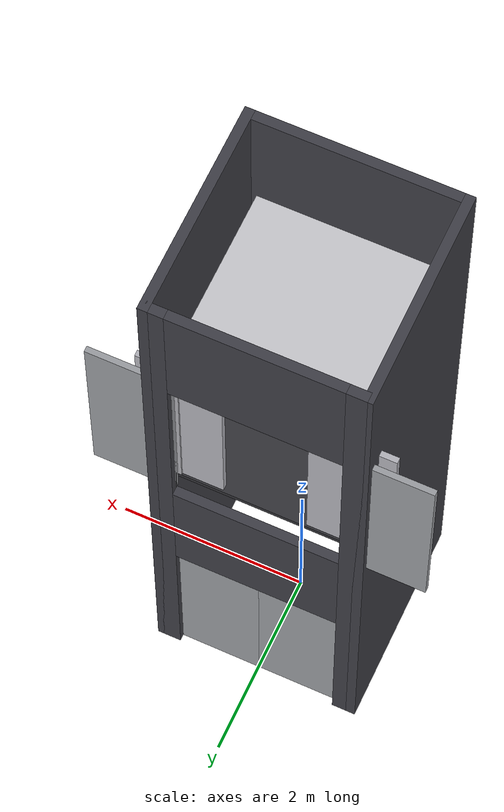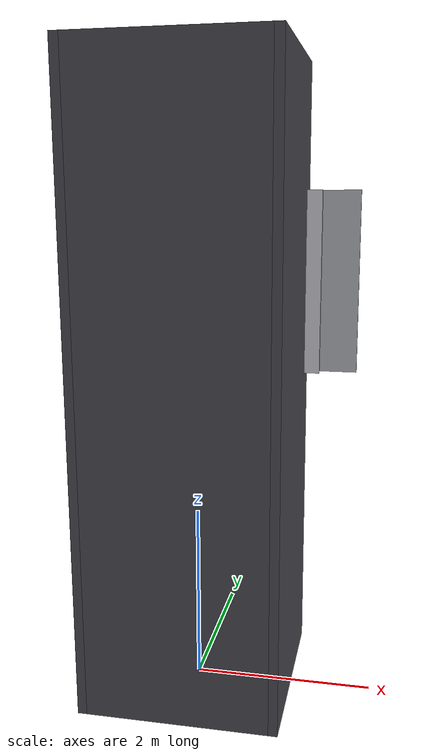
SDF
<?xml version="1.0" ?>
<sdf version="1.6">
  <model name="lift_assembly">
    <static>true</static>

    <!-- SHAFT (fixed geometry, identical to the original) -->
    <link name="shaft_link">
      <pose>0 0 0 0 0 0</pose>

      <!-- Left Wall (Solid) -->
      <collision name="left_wall_collision">
        <pose>-1.05 0 3.5 0 0 0</pose>
        <geometry><box><size>0.1 2.2 7.0</size></box></geometry>
      </collision>
      <visual name="left_wall_visual">
        <pose>-1.05 0 3.5 0 0 0</pose>
        <geometry><box><size>0.1 2.2 7.0</size></box></geometry>
        <material><ambient>0.25 0.25 0.28 1</ambient><diffuse>0.25 0.25 0.28 1</diffuse><specular>0.4 0.4 0.4 1</specular></material>
      </visual>

      <!-- Right Wall (Solid) -->
      <collision name="right_wall_collision">
        <pose>1.05 0 3.5 0 0 0</pose>
        <geometry><box><size>0.1 2.2 7.0</size></box></geometry>
      </collision>
      <visual name="right_wall_visual">
        <pose>1.05 0 3.5 0 0 0</pose>
        <geometry><box><size>0.1 2.2 7.0</size></box></geometry>
        <material><ambient>0.25 0.25 0.28 1</ambient><diffuse>0.25 0.25 0.28 1</diffuse><specular>0.4 0.4 0.4 1</specular></material>
      </visual>

      <!-- Back Wall (Solid) -->
      <collision name="back_wall_collision">
        <pose>0 -1.05 3.5 0 0 0</pose>
        <geometry><box><size>2.0 0.1 7.0</size></box></geometry>
      </collision>
      <visual name="back_wall_visual">
        <pose>0 -1.05 3.5 0 0 0</pose>
        <geometry><box><size>2.0 0.1 7.0</size></box></geometry>
        <material><ambient>0.25 0.25 0.28 1</ambient><diffuse>0.25 0.25 0.28 1</diffuse><specular>0.4 0.4 0.4 1</specular></material>
      </visual>

      <!-- Front Wall posts + beams (with door openings) -->
      <collision name="front_left_post_collision">
        <pose>-0.95 1.05 3.5 0 0 0</pose>
        <geometry><box><size>0.2 0.1 7.0</size></box></geometry>
      </collision>
      <visual name="front_left_post_visual">
        <pose>-0.95 1.05 3.5 0 0 0</pose>
        <geometry><box><size>0.2 0.1 7.0</size></box></geometry>
        <material><ambient>0.25 0.25 0.28 1</ambient><diffuse>0.25 0.25 0.28 1</diffuse></material>
      </visual>

      <collision name="front_right_post_collision">
        <pose>0.95 1.05 3.5 0 0 0</pose>
        <geometry><box><size>0.2 0.1 7.0</size></box></geometry>
      </collision>
      <visual name="front_right_post_visual">
        <pose>0.95 1.05 3.5 0 0 0</pose>
        <geometry><box><size>0.2 0.1 7.0</size></box></geometry>
        <material><ambient>0.25 0.25 0.28 1</ambient><diffuse>0.25 0.25 0.28 1</diffuse></material>
      </visual>

      <collision name="front_mid_beam_collision">
        <pose>0 1.05 2.8 0 0 0</pose>
        <geometry><box><size>1.7 0.1 1.4</size></box></geometry>
      </collision>
      <visual name="front_mid_beam_visual">
        <pose>0 1.05 2.8 0 0 0</pose>
        <geometry><box><size>1.7 0.1 1.4</size></box></geometry>
        <material><ambient>0.25 0.25 0.28 1</ambient><diffuse>0.25 0.25 0.28 1</diffuse></material>
      </visual>

      <collision name="front_top_beam_collision">
        <pose>0 1.05 6.3 0 0 0</pose>
        <geometry><box><size>1.7 0.1 1.4</size></box></geometry>
      </collision>
      <visual name="front_top_beam_visual">
        <pose>0 1.05 6.3 0 0 0</pose>
        <geometry><box><size>1.7 0.1 1.4</size></box></geometry>
        <material><ambient>0.25 0.25 0.28 1</ambient><diffuse>0.25 0.25 0.28 1</diffuse></material>
      </visual>

      <!-- GROUND FLOOR LANDING DOORS - CLOSED (cabin isn't here) -->
      <collision name="ground_door_left_collision">
        <pose>-0.425 1.0 1.05 0 0 0</pose>
        <geometry><box><size>0.85 0.06 2.1</size></box></geometry>
      </collision>
      <visual name="ground_door_left_visual">
        <pose>-0.425 1.0 1.05 0 0 0</pose>
        <geometry><box><size>0.85 0.06 2.1</size></box></geometry>
        <material><ambient>0.55 0.56 0.58 1</ambient><diffuse>0.62 0.63 0.65 1</diffuse><specular>0.75 0.75 0.77 1</specular></material>
      </visual>

      <collision name="ground_door_right_collision">
        <pose>0.425 1.0 1.05 0 0 0</pose>
        <geometry><box><size>0.85 0.06 2.1</size></box></geometry>
      </collision>
      <visual name="ground_door_right_visual">
        <pose>0.425 1.0 1.05 0 0 0</pose>
        <geometry><box><size>0.85 0.06 2.1</size></box></geometry>
        <material><ambient>0.55 0.56 0.58 1</ambient><diffuse>0.62 0.63 0.65 1</diffuse><specular>0.75 0.75 0.77 1</specular></material>
      </visual>

      <!-- FIRST FLOOR LANDING DOORS - OPEN (slid fully into the side-wall
           pockets), since the cabin has "arrived" here -->
      <collision name="first_door_left_collision">
        <pose>-1.275 1.0 4.55 0 0 0</pose>
        <geometry><box><size>0.85 0.06 2.1</size></box></geometry>
      </collision>
      <visual name="first_door_left_visual">
        <pose>-1.275 1.0 4.55 0 0 0</pose>
        <geometry><box><size>0.85 0.06 2.1</size></box></geometry>
        <material><ambient>0.55 0.56 0.58 1</ambient><diffuse>0.62 0.63 0.65 1</diffuse><specular>0.75 0.75 0.77 1</specular></material>
      </visual>

      <collision name="first_door_right_collision">
        <pose>1.275 1.0 4.55 0 0 0</pose>
        <geometry><box><size>0.85 0.06 2.1</size></box></geometry>
      </collision>
      <visual name="first_door_right_visual">
        <pose>1.275 1.0 4.55 0 0 0</pose>
        <geometry><box><size>0.85 0.06 2.1</size></box></geometry>
        <material><ambient>0.55 0.56 0.58 1</ambient><diffuse>0.62 0.63 0.65 1</diffuse><specular>0.75 0.75 0.77 1</specular></material>
      </visual>
    </link>

    <!-- CABIN - fixed permanently at the first floor level (z = 3.5) -->
    <link name="cabin_link">
      <pose>0 0 3.5 0 0 0</pose>

      <collision name="floor_collision">
        <pose>0 0 0.025 0 0 0</pose>
        <geometry><box><size>1.8 1.8 0.05</size></box></geometry>
      </collision>
      <visual name="floor_visual">
        <pose>0 0 0.025 0 0 0</pose>
        <geometry><box><size>1.8 1.8 0.05</size></box></geometry>
        <material><ambient>0.2 0.2 0.22 1</ambient><diffuse>0.2 0.2 0.22 1</diffuse></material>
      </visual>

      <collision name="left_wall_collision">
        <pose>-0.875 0 1.2 0 0 0</pose>
        <geometry><box><size>0.05 1.8 2.3</size></box></geometry>
      </collision>
      <visual name="left_wall_visual">
        <pose>-0.875 0 1.2 0 0 0</pose>
        <geometry><box><size>0.05 1.8 2.3</size></box></geometry>
        <material><ambient>0.7 0.7 0.72 1</ambient><diffuse>0.7 0.7 0.72 1</diffuse><specular>0.7 0.7 0.72 1</specular></material>
      </visual>

      <collision name="right_wall_collision">
        <pose>0.875 0 1.2 0 0 0</pose>
        <geometry><box><size>0.05 1.8 2.3</size></box></geometry>
      </collision>
      <visual name="right_wall_visual">
        <pose>0.875 0 1.2 0 0 0</pose>
        <geometry><box><size>0.05 1.8 2.3</size></box></geometry>
        <material><ambient>0.7 0.7 0.72 1</ambient><diffuse>0.7 0.7 0.72 1</diffuse><specular>0.7 0.7 0.72 1</specular></material>
      </visual>

      <collision name="back_wall_collision">
        <pose>0 -0.875 1.2 0 0 0</pose>
        <geometry><box><size>1.8 0.05 2.3</size></box></geometry>
      </collision>
      <visual name="back_wall_visual">
        <pose>0 -0.875 1.2 0 0 0</pose>
        <geometry><box><size>1.8 0.05 2.3</size></box></geometry>
        <material><ambient>0.7 0.7 0.72 1</ambient><diffuse>0.7 0.7 0.72 1</diffuse><specular>0.7 0.7 0.72 1</specular></material>
      </visual>

      <collision name="roof_collision">
        <pose>0 0 2.375 0 0 0</pose>
        <geometry><box><size>1.8 1.8 0.05</size></box></geometry>
      </collision>
      <visual name="roof_visual">
        <pose>0 0 2.375 0 0 0</pose>
        <geometry><box><size>1.8 1.8 0.05</size></box></geometry>
        <material><ambient>0.8 0.8 0.82 1</ambient><diffuse>0.8 0.8 0.82 1</diffuse></material>
      </visual>

      <visual name="light_panel">
        <pose>0 0 2.34 0 0 0</pose>
        <geometry><box><size>0.5 0.5 0.02</size></box></geometry>
        <material><ambient>1.0 1.0 1.0 1</ambient><diffuse>1.0 1.0 1.0 1</diffuse><emissive>1.0 1.0 1.0 1</emissive></material>
      </visual>

      <!-- Cabin doors - OPEN, slid fully into the cabin's own side walls -->
      <collision name="cabin_door_left_collision">
        <pose>-0.85 0.85 1.05 0 0 0</pose>
        <geometry><box><size>0.85 0.06 2.1</size></box></geometry>
      </collision>
      <visual name="cabin_door_left_visual">
        <pose>-0.85 0.85 1.05 0 0 0</pose>
        <geometry><box><size>0.85 0.06 2.1</size></box></geometry>
        <material><ambient>0.65 0.65 0.68 1</ambient><diffuse>0.72 0.72 0.75 1</diffuse><specular>0.8 0.8 0.82 1</specular></material>
      </visual>

      <collision name="cabin_door_right_collision">
        <pose>0.85 0.85 1.05 0 0 0</pose>
        <geometry><box><size>0.85 0.06 2.1</size></box></geometry>
      </collision>
      <visual name="cabin_door_right_visual">
        <pose>0.85 0.85 1.05 0 0 0</pose>
        <geometry><box><size>0.85 0.06 2.1</size></box></geometry>
        <material><ambient>0.65 0.65 0.68 1</ambient><diffuse>0.72 0.72 0.75 1</diffuse><specular>0.8 0.8 0.82 1</specular></material>
      </visual>
    </link>

  </model>
</sdf>
